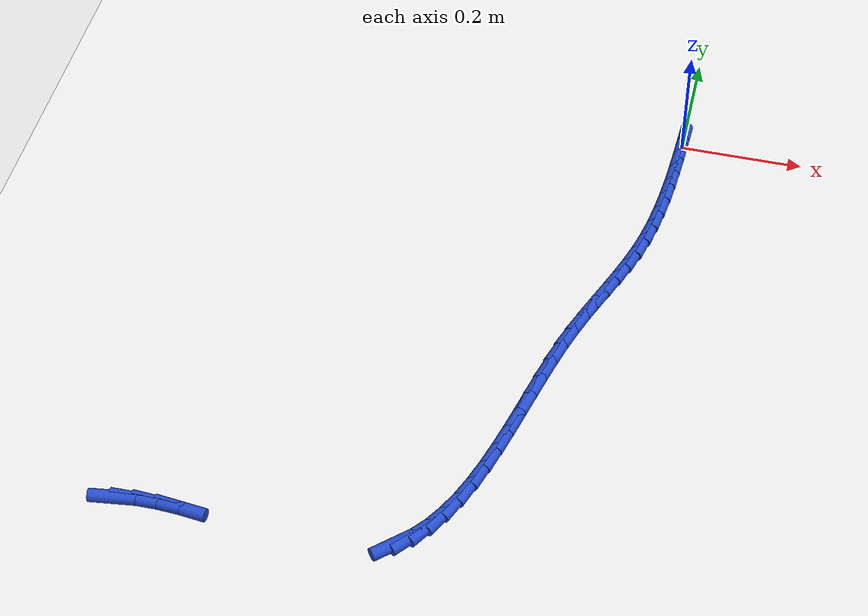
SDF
<sdf version="1.6">
 <world name="default">
  <model name="ground_plane">
   <static>1</static>
   <link name="link">
    <collision name="collision">
     <geometry><plane><normal>0 0 1</normal><size>100 100</size></plane></geometry>
     <surface><friction><ode><mu>100</mu><mu2>50</mu2></ode></friction></surface>
    </collision>
    <visual name="visual">
     <cast_shadows>0</cast_shadows>
     <geometry><plane><normal>0 0 1</normal><size>100 100</size></plane></geometry>
     <material>
      <script><uri>file://media/materials/scripts/gazebo.material</uri><name>Gazebo/WhiteGlow</name></script>
     </material>
    </visual>
   </link>
  </model>
  <model name="line">
   <link name="link_0">
    <pose>-1.452830911130576e-17 -1.3877787807814457e-17 0.01 0 1.57 1.5314146172962937</pose>
    <collision name="collision">
     <geometry><cylinder><radius>0.01</radius><length>0.08</length></cylinder></geometry>
    </collision>
    <visual name="visual">
     <material>
      <script><name>Gazebo/Blue</name><uri>file://media/materials/scripts/gazebo.material</uri></script>
     </material>
     <geometry><cylinder><radius>0.01</radius><length>0.08</length></cylinder></geometry>
    </visual>
   </link>
   <link name="link_229">
    <pose>-0.6835834022530359 -0.8817772744654863 0.01 0 1.57 0.12343655289953322</pose>
    <collision name="collision">
     <geometry><cylinder><radius>0.01</radius><length>0.08</length></cylinder></geometry>
    </collision>
    <visual name="visual">
     <material>
      <script><name>Gazebo/Blue</name><uri>file://media/materials/scripts/gazebo.material</uri></script>
     </material>
     <geometry><cylinder><radius>0.01</radius><length>0.08</length></cylinder></geometry>
    </visual>
   </link>
   <link name="link_230">
    <pose>-0.653167937357036 -0.8780037094160555 0.01 0 1.57 0.016785655701136094</pose>
    <collision name="collision">
     <geometry><cylinder><radius>0.01</radius><length>0.08</length></cylinder></geometry>
    </collision>
    <visual name="visual">
     <material>
      <script><name>Gazebo/Blue</name><uri>file://media/materials/scripts/gazebo.material</uri></script>
     </material>
     <geometry><cylinder><radius>0.01</radius><length>0.08</length></cylinder></geometry>
    </visual>
   </link>
   <link name="link_231">
    <pose>-0.6207762789406467 -0.8774599431191188 0.01 0 1.57 -0.05684181041855346</pose>
    <collision name="collision">
     <geometry><cylinder><radius>0.01</radius><length>0.08</length></cylinder></geometry>
    </collision>
    <visual name="visual">
     <material>
      <script><name>Gazebo/Blue</name><uri>file://media/materials/scripts/gazebo.material</uri></script>
     </material>
     <geometry><cylinder><radius>0.01</radius><length>0.08</length></cylinder></geometry>
    </visual>
   </link>
   <link name="link_232">
    <pose>-0.5868863081347067 -0.8793883877916591 0.01 0 1.57 -0.10397844600090277</pose>
    <collision name="collision">
     <geometry><cylinder><radius>0.01</radius><length>0.08</length></cylinder></geometry>
    </collision>
    <visual name="visual">
     <material>
      <script><name>Gazebo/Blue</name><uri>file://media/materials/scripts/gazebo.material</uri></script>
     </material>
     <geometry><cylinder><radius>0.01</radius><length>0.08</length></cylinder></geometry>
    </visual>
   </link>
   <link name="link_242">
    <pose>-0.27026033897705276 -0.8686915421359486 0.01 0 1.57 0.7331146595012619</pose>
    <collision name="collision">
     <geometry><cylinder><radius>0.01</radius><length>0.08</length></cylinder></geometry>
    </collision>
    <visual name="visual">
     <material>
      <script><name>Gazebo/Blue</name><uri>file://media/materials/scripts/gazebo.material</uri></script>
     </material>
     <geometry><cylinder><radius>0.01</radius><length>0.08</length></cylinder></geometry>
    </visual>
   </link>
   <link name="link_243">
    <pose>-0.24985002246108495 -0.8503111878242329 0.01 0 1.57 0.8835695760565047</pose>
    <collision name="collision">
     <geometry><cylinder><radius>0.01</radius><length>0.08</length></cylinder></geometry>
    </collision>
    <visual name="visual">
     <material>
      <script><name>Gazebo/Blue</name><uri>file://media/materials/scripts/gazebo.material</uri></script>
     </material>
     <geometry><cylinder><radius>0.01</radius><length>0.08</length></cylinder></geometry>
    </visual>
   </link>
   <link name="link_244">
    <pose>-0.23178641799414237 -0.8283007728042828 0.01 0 1.57 1.0059636018436657</pose>
    <collision name="collision">
     <geometry><cylinder><radius>0.01</radius><length>0.08</length></cylinder></geometry>
    </collision>
    <visual name="visual">
     <material>
      <script><name>Gazebo/Blue</name><uri>file://media/materials/scripts/gazebo.material</uri></script>
     </material>
     <geometry><cylinder><radius>0.01</radius><length>0.08</length></cylinder></geometry>
    </visual>
   </link>
   <link name="link_245">
    <pose>-0.21580353060644544 -0.8030793303469314 0.01 0 1.57 1.102548796461757</pose>
    <collision name="collision">
     <geometry><cylinder><radius>0.01</radius><length>0.08</length></cylinder></geometry>
    </collision>
    <visual name="visual">
     <material>
      <script><name>Gazebo/Blue</name><uri>file://media/materials/scripts/gazebo.material</uri></script>
     </material>
     <geometry><cylinder><radius>0.01</radius><length>0.08</length></cylinder></geometry>
    </visual>
   </link>
   <link name="link_246">
    <pose>-0.20163536532821266 -0.7750658937230097 0.01 0 1.57 1.1771711881844458</pose>
    <collision name="collision">
     <geometry><cylinder><radius>0.01</radius><length>0.08</length></cylinder></geometry>
    </collision>
    <visual name="visual">
     <material>
      <script><name>Gazebo/Blue</name><uri>file://media/materials/scripts/gazebo.material</uri></script>
     </material>
     <geometry><cylinder><radius>0.01</radius><length>0.08</length></cylinder></geometry>
    </visual>
   </link>
   <link name="link_247">
    <pose>-0.18901592718966287 -0.7446794962033485 0.01 0 1.57 1.2336369837984849</pose>
    <collision name="collision">
     <geometry><cylinder><radius>0.01</radius><length>0.08</length></cylinder></geometry>
    </collision>
    <visual name="visual">
     <material>
      <script><name>Gazebo/Blue</name><uri>file://media/materials/scripts/gazebo.material</uri></script>
     </material>
     <geometry><cylinder><radius>0.01</radius><length>0.08</length></cylinder></geometry>
    </visual>
   </link>
   <link name="link_248">
    <pose>-0.17767922122101598 -0.7123391710587812 0.01 0 1.57 1.2750821123577565</pose>
    <collision name="collision">
     <geometry><cylinder><radius>0.01</radius><length>0.08</length></cylinder></geometry>
    </collision>
    <visual name="visual">
     <material>
      <script><name>Gazebo/Blue</name><uri>file://media/materials/scripts/gazebo.material</uri></script>
     </material>
     <geometry><cylinder><radius>0.01</radius><length>0.08</length></cylinder></geometry>
    </visual>
   </link>
   <link name="link_249">
    <pose>-0.16735925245249048 -0.6784639515601376 0.01 0 1.57 1.3038473640535024</pose>
    <collision name="collision">
     <geometry><cylinder><radius>0.01</radius><length>0.08</length></cylinder></geometry>
    </collision>
    <visual name="visual">
     <material>
      <script><name>Gazebo/Blue</name><uri>file://media/materials/scripts/gazebo.material</uri></script>
     </material>
     <geometry><cylinder><radius>0.01</radius><length>0.08</length></cylinder></geometry>
    </visual>
   </link>
   <link name="link_250">
    <pose>-0.1577900259143061 -0.6434728709782518 0.01 0 1.57 1.3215367009039862</pose>
    <collision name="collision">
     <geometry><cylinder><radius>0.01</radius><length>0.08</length></cylinder></geometry>
    </collision>
    <visual name="visual">
     <material>
      <script><name>Gazebo/Blue</name><uri>file://media/materials/scripts/gazebo.material</uri></script>
     </material>
     <geometry><cylinder><radius>0.01</radius><length>0.08</length></cylinder></geometry>
    </visual>
   </link>
   <link name="link_251">
    <pose>-0.1487055466366815 -0.607784962583953 0.01 0 1.57 1.3291097345297738</pose>
    <collision name="collision">
     <geometry><cylinder><radius>0.01</radius><length>0.08</length></cylinder></geometry>
    </collision>
    <visual name="visual">
     <material>
      <script><name>Gazebo/Blue</name><uri>file://media/materials/scripts/gazebo.material</uri></script>
     </material>
     <geometry><cylinder><radius>0.01</radius><length>0.08</length></cylinder></geometry>
    </visual>
   </link>
   <link name="link_252">
    <pose>-0.13983981964983633 -0.5718192596480749 0.01 0 1.57 1.3269515217072771</pose>
    <collision name="collision">
     <geometry><cylinder><radius>0.01</radius><length>0.08</length></cylinder></geometry>
    </collision>
    <visual name="visual">
     <material>
      <script><name>Gazebo/Blue</name><uri>file://media/materials/scripts/gazebo.material</uri></script>
     </material>
     <geometry><cylinder><radius>0.01</radius><length>0.08</length></cylinder></geometry>
    </visual>
   </link>
   <link name="link_253">
    <pose>-0.13092684998398918 -0.5359947954414472 0.01 0 1.57 1.314901111963968</pose>
    <collision name="collision">
     <geometry><cylinder><radius>0.01</radius><length>0.08</length></cylinder></geometry>
    </collision>
    <visual name="visual">
     <material>
      <script><name>Gazebo/Blue</name><uri>file://media/materials/scripts/gazebo.material</uri></script>
     </material>
     <geometry><cylinder><radius>0.01</radius><length>0.08</length></cylinder></geometry>
    </visual>
   </link>
   <link name="link_254">
    <pose>-0.12170064266935977 -0.5007306032349038 0.01 0 1.57 1.2922335540737444</pose>
    <collision name="collision">
     <geometry><cylinder><radius>0.01</radius><length>0.08</length></cylinder></geometry>
    </collision>
    <visual name="visual">
     <material>
      <script><name>Gazebo/Blue</name><uri>file://media/materials/scripts/gazebo.material</uri></script>
     </material>
     <geometry><cylinder><radius>0.01</radius><length>0.08</length></cylinder></geometry>
    </visual>
   </link>
   <link name="link_255">
    <pose>-0.11189520273616675 -0.46644571629927445 0.01 0 1.57 1.2580188875609675</pose>
    <collision name="collision">
     <geometry><cylinder><radius>0.01</radius><length>0.08</length></cylinder></geometry>
    </collision>
    <visual name="visual">
     <material>
      <script><name>Gazebo/Blue</name><uri>file://media/materials/scripts/gazebo.material</uri></script>
     </material>
     <geometry><cylinder><radius>0.01</radius><length>0.08</length></cylinder></geometry>
    </visual>
   </link>
   <link name="link_256">
    <pose>-0.10125557217389856 -0.4335456802111072 0.01 0 1.57 1.2222728284083293</pose>
    <collision name="collision">
     <geometry><cylinder><radius>0.01</radius><length>0.08</length></cylinder></geometry>
    </collision>
    <visual name="visual">
     <material>
      <script><name>Gazebo/Blue</name><uri>file://media/materials/scripts/gazebo.material</uri></script>
     </material>
     <geometry><cylinder><radius>0.01</radius><length>0.08</length></cylinder></geometry>
    </visual>
   </link>
   <link name="link_257">
    <pose>-0.08982103725824325 -0.4020764598978838 0.01 0 1.57 1.198293355076777</pose>
    <collision name="collision">
     <geometry><cylinder><radius>0.01</radius><length>0.08</length></cylinder></geometry>
    </collision>
    <visual name="visual">
     <material>
      <script><name>Gazebo/Blue</name><uri>file://media/materials/scripts/gazebo.material</uri></script>
     </material>
     <geometry><cylinder><radius>0.01</radius><length>0.08</length></cylinder></geometry>
    </visual>
   </link>
   <link name="link_258">
    <pose>-0.0779494898155289 -0.3716946690029089 0.01 0 1.57 1.188202634091637</pose>
    <collision name="collision">
     <geometry><cylinder><radius>0.01</radius><length>0.08</length></cylinder></geometry>
    </collision>
    <visual name="visual">
     <material>
      <script><name>Gazebo/Blue</name><uri>file://media/materials/scripts/gazebo.material</uri></script>
     </material>
     <geometry><cylinder><radius>0.01</radius><length>0.08</length></cylinder></geometry>
    </visual>
   </link>
   <link name="link_259">
    <pose>-0.06601474055011029 -0.34203746753602426 0.01 0 1.57 1.1930603101929114</pose>
    <collision name="collision">
     <geometry><cylinder><radius>0.01</radius><length>0.08</length></cylinder></geometry>
    </collision>
    <visual name="visual">
     <material>
      <script><name>Gazebo/Blue</name><uri>file://media/materials/scripts/gazebo.material</uri></script>
     </material>
     <geometry><cylinder><radius>0.01</radius><length>0.08</length></cylinder></geometry>
    </visual>
   </link>
   <link name="link_260">
    <pose>-0.05439060016634089 -0.3127420155070684 0.01 0 1.57 1.2134173965950437</pose>
    <collision name="collision">
     <geometry><cylinder><radius>0.01</radius><length>0.08</length></cylinder></geometry>
    </collision>
    <visual name="visual">
     <material>
      <script><name>Gazebo/Blue</name><uri>file://media/materials/scripts/gazebo.material</uri></script>
     </material>
     <geometry><cylinder><radius>0.01</radius><length>0.08</length></cylinder></geometry>
    </visual>
   </link>
   <link name="link_261">
    <pose>-0.04345087936857546 -0.28344547292588346 0.01 0 1.57 1.2492076288642628</pose>
    <collision name="collision">
     <geometry><cylinder><radius>0.01</radius><length>0.08</length></cylinder></geometry>
    </collision>
    <visual name="visual">
     <material>
      <script><name>Gazebo/Blue</name><uri>file://media/materials/scripts/gazebo.material</uri></script>
     </material>
     <geometry><cylinder><radius>0.01</radius><length>0.08</length></cylinder></geometry>
    </visual>
   </link>
   <link name="link_262">
    <pose>-0.033569388861167525 -0.25378499980230773 0.01 0 1.57 1.2995375714345327</pose>
    <collision name="collision">
     <geometry><cylinder><radius>0.01</radius><length>0.08</length></cylinder></geometry>
    </collision>
    <visual name="visual">
     <material>
      <script><name>Gazebo/Blue</name><uri>file://media/materials/scripts/gazebo.material</uri></script>
     </material>
     <geometry><cylinder><radius>0.01</radius><length>0.08</length></cylinder></geometry>
    </visual>
   </link>
   <link name="link_263">
    <pose>-0.02511865912351725 -0.2233991275950981 0.01 0 1.57 1.3558539210601468</pose>
    <collision name="collision">
     <geometry><cylinder><radius>0.01</radius><length>0.08</length></cylinder></geometry>
    </collision>
    <visual name="visual">
     <material>
      <script><name>Gazebo/Blue</name><uri>file://media/materials/scripts/gazebo.material</uri></script>
     </material>
     <geometry><cylinder><radius>0.01</radius><length>0.08</length></cylinder></geometry>
    </visual>
   </link>
   <link name="link_264">
    <pose>-0.018290060137496532 -0.19212045706845188 0.01 0 1.57 1.40388998290646</pose>
    <collision name="collision">
     <geometry><cylinder><radius>0.01</radius><length>0.08</length></cylinder></geometry>
    </collision>
    <visual name="visual">
     <material>
      <script><name>Gazebo/Blue</name><uri>file://media/materials/scripts/gazebo.material</uri></script>
     </material>
     <geometry><cylinder><radius>0.01</radius><length>0.08</length></cylinder></geometry>
    </visual>
   </link>
   <link name="link_265">
    <pose>-0.012908034288093638 -0.16017466244821155 0.01 0 1.57 1.4430059271064886</pose>
    <collision name="collision">
     <geometry><cylinder><radius>0.01</radius><length>0.08</length></cylinder></geometry>
    </collision>
    <visual name="visual">
     <material>
      <script><name>Gazebo/Blue</name><uri>file://media/materials/scripts/gazebo.material</uri></script>
     </material>
     <geometry><cylinder><radius>0.01</radius><length>0.08</length></cylinder></geometry>
    </visual>
   </link>
   <link name="link_266">
    <pose>-0.008752681515584136 -0.1278349200788585 0.01 0 1.57 1.4741015943388758</pose>
    <collision name="collision">
     <geometry><cylinder><radius>0.01</radius><length>0.08</length></cylinder></geometry>
    </collision>
    <visual name="visual">
     <material>
      <script><name>Gazebo/Blue</name><uri>file://media/materials/scripts/gazebo.material</uri></script>
     </material>
     <geometry><cylinder><radius>0.01</radius><length>0.08</length></cylinder></geometry>
    </visual>
   </link>
   <link name="link_267">
    <pose>-0.005604101760244198 -0.0953744063048781 0.01 0 1.57 1.497826608186131</pose>
    <collision name="collision">
     <geometry><cylinder><radius>0.01</radius><length>0.08</length></cylinder></geometry>
    </collision>
    <visual name="visual">
     <material>
      <script><name>Gazebo/Blue</name><uri>file://media/materials/scripts/gazebo.material</uri></script>
     </material>
     <geometry><cylinder><radius>0.01</radius><length>0.08</length></cylinder></geometry>
    </visual>
   </link>
   <link name="link_268">
    <pose>-0.0032423949623495985 -0.06306629747075286 0.01 0 1.57 1.514563590016637</pose>
    <collision name="collision">
     <geometry><cylinder><radius>0.01</radius><length>0.08</length></cylinder></geometry>
    </collision>
    <visual name="visual">
     <material>
      <script><name>Gazebo/Blue</name><uri>file://media/materials/scripts/gazebo.material</uri></script>
     </material>
     <geometry><cylinder><radius>0.01</radius><length>0.08</length></cylinder></geometry>
    </visual>
   </link>
   <link name="link_269">
    <pose>-0.0014476610621762 -0.03118376992096512 0.01 0 1.57 1.5244060912572992</pose>
    <collision name="collision">
     <geometry><cylinder><radius>0.01</radius><length>0.08</length></cylinder></geometry>
    </collision>
    <visual name="visual">
     <material>
      <script><name>Gazebo/Blue</name><uri>file://media/materials/scripts/gazebo.material</uri></script>
     </material>
     <geometry><cylinder><radius>0.01</radius><length>0.08</length></cylinder></geometry>
    </visual>
   </link>
   <link name="link_270">
    <pose>-2.4936649967166602e-17 -2.1510571102112408e-16 0.01 0 1.57 1.5271164795975312</pose>
    <collision name="collision">
     <geometry><cylinder><radius>0.01</radius><length>0.08</length></cylinder></geometry>
    </collision>
    <visual name="visual">
     <material>
      <script><name>Gazebo/Blue</name><uri>file://media/materials/scripts/gazebo.material</uri></script>
     </material>
     <geometry><cylinder><radius>0.01</radius><length>0.08</length></cylinder></geometry>
    </visual>
   </link>
  </model>
 </world>
</sdf>
